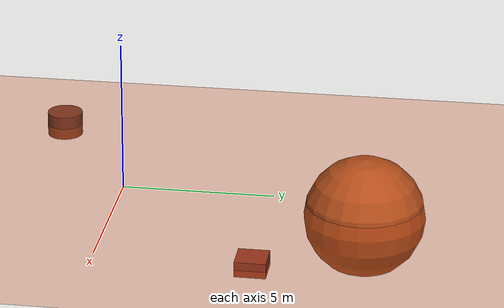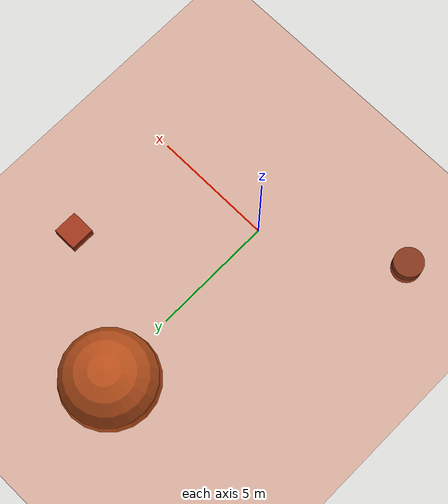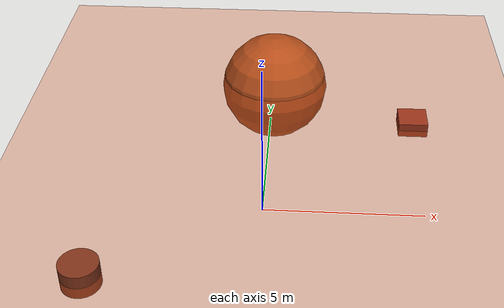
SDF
<?xml version="1.0"?>
<sdf version="1.6">
  <world name="mars_world">
    <!-- Set up physics properties -->
    <physics type="ode">
      <max_step_size>0.001</max_step_size>
      <real_time_factor>1</real_time_factor>
      <real_time_update_rate>1000</real_time_update_rate>
      <gravity>0 0 -3.711</gravity> <!-- Mars gravity = 3.711 m/s^2 -->
    </physics>

    <!-- Global light source -->
    <light type="directional" name="sun">
      <cast_shadows>true</cast_shadows>
      <pose>0 0 10 0 0 0</pose>
      <diffuse>0.8 0.8 0.8 1</diffuse>
      <specular>0.2 0.2 0.2 1</specular>
      <direction>-0.5 0.1 -0.9</direction>
    </light>

    <!-- Mars-like ground plane with red color -->
    <model name="mars_ground_plane">
      <static>true</static>
      <link name="link">
        <collision name="collision">
          <geometry>
            <plane>
              <normal>0 0 1</normal>
              <size>100 100</size>
            </plane>
          </geometry>
          <surface>
            <friction>
              <ode>
                <mu>100</mu>
                <mu2>50</mu2>
              </ode>
            </friction>
          </surface>
        </collision>
        <visual name="visual">
          <cast_shadows>false</cast_shadows>
          <geometry>
            <plane>
              <normal>0 0 1</normal>
              <size>100 100</size>
            </plane>
          </geometry>
          <material>
            <ambient>0.8 0.3 0.1 1</ambient>
            <diffuse>0.8 0.3 0.1 1</diffuse>
            <specular>0.1 0.1 0.1 1</specular>
          </material>
        </visual>
      </link>
    </model>

    <!-- Add some Mars-like rocks -->
    <model name="rock1">
      <static>true</static>
      <pose>5 5 0 0 0 0</pose>
      <link name="rock_link">
        <collision name="collision">
          <geometry>
            <box>
              <size>1 1 0.5</size>
            </box>
          </geometry>
        </collision>
        <visual name="visual">
          <geometry>
            <box>
              <size>1 1 0.5</size>
            </box>
          </geometry>
          <material>
            <ambient>0.6 0.2 0.1 1</ambient>
            <diffuse>0.6 0.2 0.1 1</diffuse>
          </material>
        </visual>
      </link>
    </model>

    <model name="rock2">
      <static>true</static>
      <pose>-5 -3 0 0 0 0</pose>
      <link name="rock_link">
        <collision name="collision">
          <geometry>
            <cylinder>
              <radius>0.6</radius>
              <length>0.8</length>
            </cylinder>
          </geometry>
        </collision>
        <visual name="visual">
          <geometry>
            <cylinder>
              <radius>0.6</radius>
              <length>0.8</length>
            </cylinder>
          </geometry>
          <material>
            <ambient>0.5 0.2 0.1 1</ambient>
            <diffuse>0.5 0.2 0.1 1</diffuse>
          </material>
        </visual>
      </link>
    </model>

    <!-- Small crater -->
    <model name="crater">
      <static>true</static>
      <pose>0 8 -0.5 0 0 0</pose>
      <link name="crater_link">
        <collision name="collision">
          <geometry>
            <sphere>
              <radius>2.0</radius>
            </sphere>
          </geometry>
        </collision>
        <visual name="visual">
          <geometry>
            <sphere>
              <radius>2.0</radius>
            </sphere>
          </geometry>
          <material>
            <ambient>0.7 0.3 0.1 1</ambient>
            <diffuse>0.7 0.3 0.1 1</diffuse>
          </material>
        </visual>
      </link>
    </model>
  </world>
</sdf>
